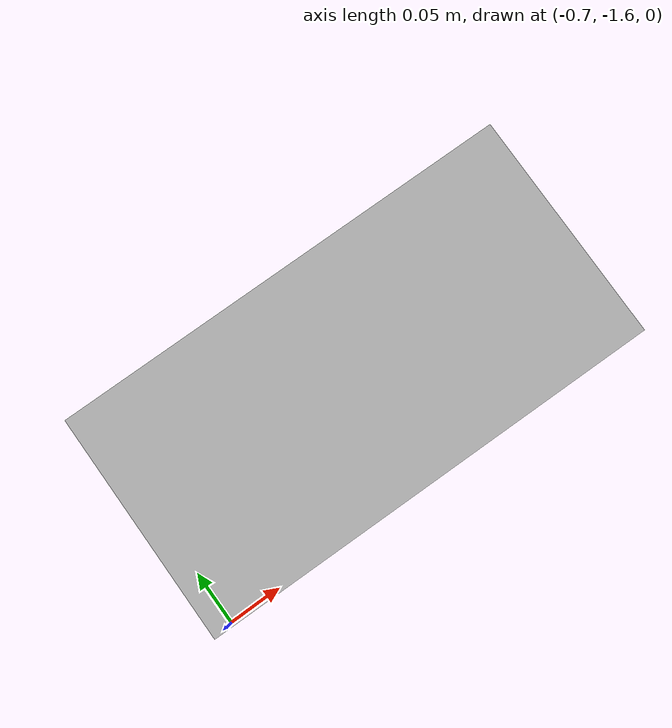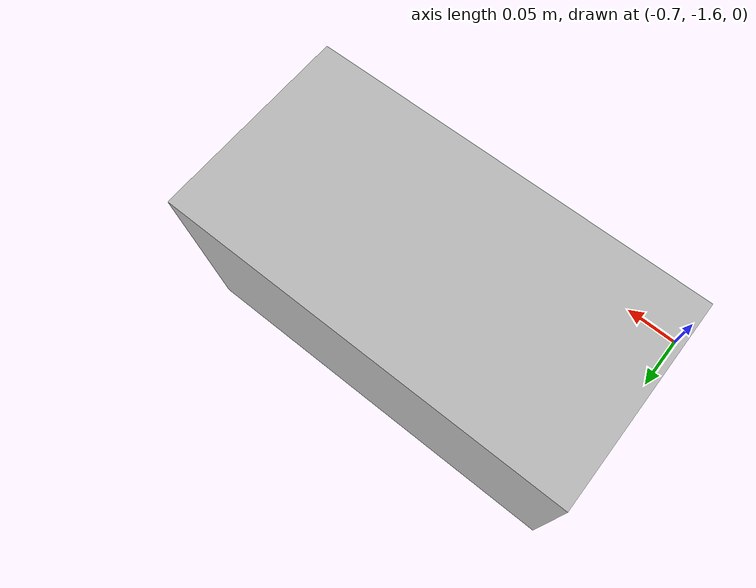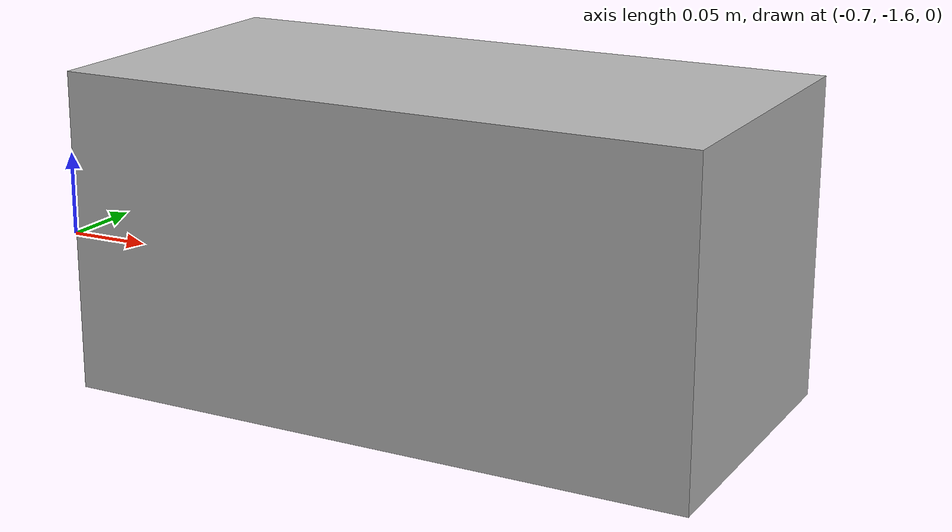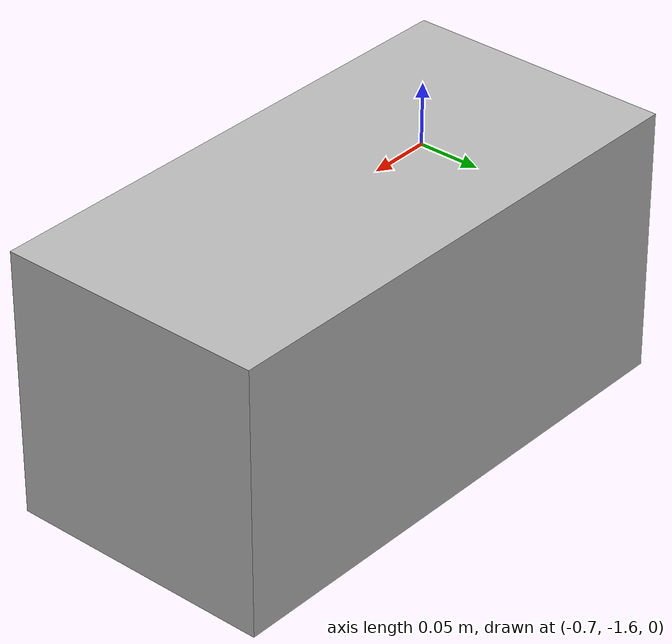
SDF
<?xml version="1.0"?>
<sdf version="1.6">
  <model name="moving_box">

    <pose>-0.5 -1.5 0 0 0 0</pose>
    <static>false</static>

    <link name="link">

      <pose>0 0 0 0 0 0</pose>

      <inertial>
        <mass>1.0</mass>
        <inertia>
          <ixx>0.001</ixx>
          <iyy>0.001</iyy>
          <izz>0.001</izz>
        </inertia>
      </inertial>

      <visual name="visual">
        <geometry>
          <box>
            <size>0.4 0.2 0.2</size>
          </box>
        </geometry>
      </visual>

      <collision name="collision">
        <geometry>
          <box>
            <size>0.2 0.2 0.2</size>
          </box>
        </geometry>
      </collision>
    </link>
  </model>
</sdf>
